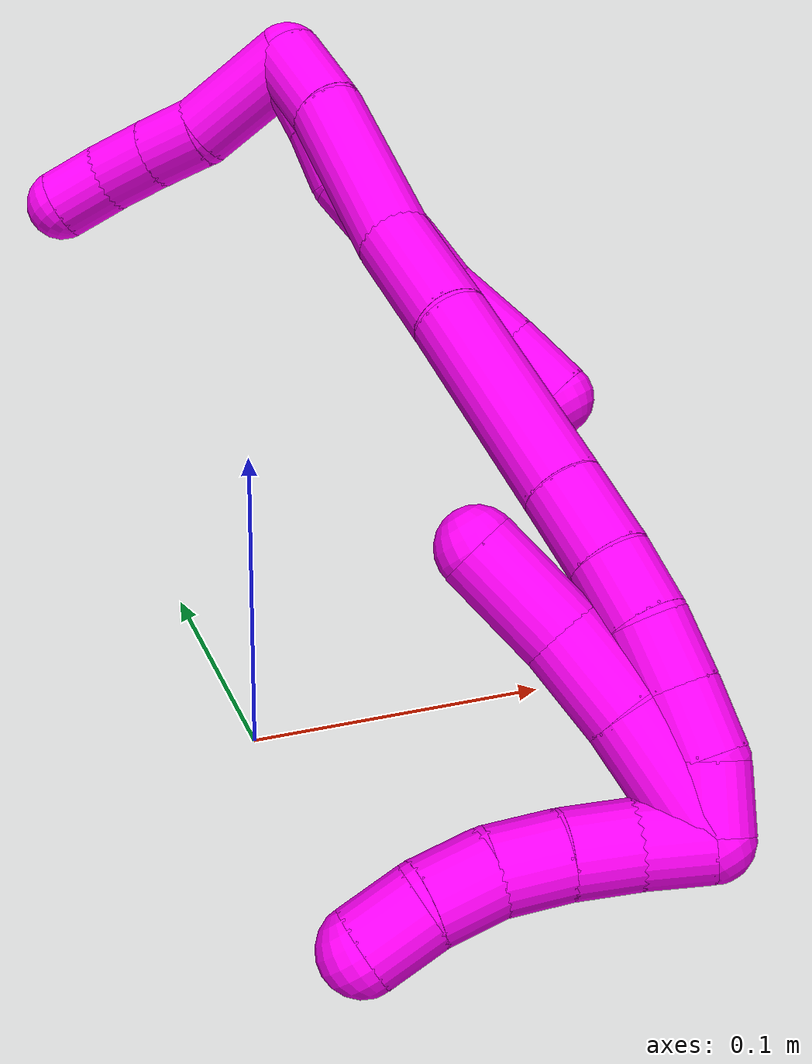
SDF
<sdf version="1.7">
 <world name="default">
  <model name="photoneo_s_sensor">
   <static>1</static>
   <pose>0 0 2 1.57079 1.57079 3.14159</pose>
   <link name="link">
    <inertial><mass>0.1</mass></inertial>
    <sensor name="sensor" type="depth">
     <update_rate>30</update_rate>
     <camera>
      <horizontal_fov>1.22</horizontal_fov>
      <image><width>1920</width><height>1200</height><format>B8G8R8</format></image>
      <clip><near>0.1</near><far>4</far></clip>
      <depth_camera><output>points</output></depth_camera>
     </camera>
     <plugin name="camera_plugin" filename="libgazebo_ros_depth_camera.so">
      <baseline>0.2</baseline>
      <alwaysOn>1</alwaysOn>
      <updateRate>0.0</updateRate>
      <cameraName>camera_ir</cameraName>
      <imageTopicName>/camera/color/image_raw</imageTopicName>
      <cameraInfoTopicName>/camera/color/camera_info</cameraInfoTopicName>
      <depthImageTopicName>/camera/depth/image_raw</depthImageTopicName>
      <depthImageCameraInfoTopicName>/camera/depth/camera_info</depthImageCameraInfoTopicName>
      <pointCloudTopicName>/camera/depth/points</pointCloudTopicName>
      <frameName>fr_optical</frameName>
      <pointCloudCutoff>0.1</pointCloudCutoff>
      <pointCloudCutoffMax>2.0</pointCloudCutoffMax>
      <distortionK1>0</distortionK1>
      <distortionK2>0</distortionK2>
      <distortionK3>0</distortionK3>
      <distortionT1>0</distortionT1>
      <distortionT2>0</distortionT2>
      <CxPrime>0</CxPrime>
      <Cx>0</Cx>
      <Cy>0</Cy>
      <focalLength>0</focalLength>
      <hackBaseline>0</hackBaseline>
     </plugin>
    </sensor>
   </link>
  </model>
  <model name="bin">
   <static>1</static>
   <link name="bottom">
    <collision name="collision-bottom">
     <pose>0 0 -0.01 0 -0 0</pose>
     <geometry><box><size>0.8 0.6 0.02</size></box></geometry>
     <surface>
      <friction><ode><mu>100</mu><mu2>100</mu2></ode></friction>
      <contact><collide_bitmask>65535</collide_bitmask></contact>
     </surface>
    </collision>
   </link>
   <link name="west_wall">
    <collision name="collision-west_wall">
     <pose>-0.41 0 0.1 0 -0 0</pose>
     <geometry><box><size>0.02 0.6 0.2</size></box></geometry>
     <surface>
      <friction><ode><mu>100</mu><mu2>100</mu2></ode></friction>
      <contact><collide_bitmask>65535</collide_bitmask></contact>
     </surface>
    </collision>
   </link>
   <link name="east_wall">
    <collision name="collision-east_wall">
     <pose>0.41 0 0.1 0 -0 0</pose>
     <geometry><box><size>0.02 0.6 0.2</size></box></geometry>
     <surface>
      <friction><ode><mu>100</mu><mu2>100</mu2></ode></friction>
      <contact><collide_bitmask>65535</collide_bitmask></contact>
     </surface>
    </collision>
   </link>
   <link name="south_wall">
    <collision name="collision-south_wall">
     <pose>0 -0.31 0.1 0 -0 0</pose>
     <geometry><box><size>0.8 0.02 0.2</size></box></geometry>
     <surface>
      <friction><ode><mu>100</mu><mu2>100</mu2></ode></friction>
      <contact><collide_bitmask>65535</collide_bitmask></contact>
     </surface>
    </collision>
   </link>
   <link name="north_wall">
    <collision name="collision-north_wall">
     <pose>0 0.31 0.1 0 -0 0</pose>
     <geometry><box><size>0.8 0.02 0.2</size></box></geometry>
     <surface>
      <friction><ode><mu>100</mu><mu2>100</mu2></ode></friction>
      <contact><collide_bitmask>65535</collide_bitmask></contact>
     </surface>
    </collision>
   </link>
  </model>
  <model name="10">
   <static>0</static>
   <link name="10">
    <collision name="collision-cylinder-e_1_2_8">
     <pose>-0.000688 -0.001043 -0.013126 3.0623 -0.052179 -1.1638</pose>
     <geometry><cylinder><radius>0.0125</radius><length>0.02637</length></cylinder></geometry>
     <surface>
      <friction><ode><mu>1.16</mu><mu2>1.16</mu2><slip1>0</slip1><slip2>0</slip2></ode></friction>
      <contact><ode><kp>1e+06</kp><kd>1</kd><max_vel>0</max_vel><min_depth>0.001</min_depth></ode></contact>
     </surface>
    </collision>
    <visual name="visual-cylinder-e_1_2_8">
     <pose>-0.000688 -0.001043 -0.013126 3.0623 -0.052179 -1.1638</pose>
     <geometry><cylinder><radius>0.0125</radius><length>0.02637</length></cylinder></geometry>
     <material><ambient>1 0 0.964706 1</ambient></material>
    </visual>
    <collision name="collision-cylinder-e_2_8_9">
     <pose>-0.003041 -0.001221 -0.03609 -3.05391 -0.1671 2.17654</pose>
     <geometry><cylinder><radius>0.0125</radius><length>0.020033</length></cylinder></geometry>
     <surface>
      <friction><ode><mu>1.16</mu><mu2>1.16</mu2><slip1>0</slip1><slip2>0</slip2></ode></friction>
      <contact><ode><kp>1e+06</kp><kd>1</kd><max_vel>0</max_vel><min_depth>0.001</min_depth></ode></contact>
     </surface>
    </collision>
    <visual name="visual-cylinder-e_2_8_9">
     <pose>-0.003041 -0.001221 -0.03609 -3.05391 -0.1671 2.17654</pose>
     <geometry><cylinder><radius>0.0125</radius><length>0.020033</length></cylinder></geometry>
     <material><ambient>1 0 0.964706 1</ambient></material>
    </visual>
    <collision name="collision-cylinder-e_3_9_10">
     <pose>-0.002362 -0.00045 -0.061071 3.13542 0.153647 3.06139</pose>
     <geometry><cylinder><radius>0.0125</radius><length>0.030645</length></cylinder></geometry>
     <surface>
      <friction><ode><mu>1.16</mu><mu2>1.16</mu2><slip1>0</slip1><slip2>0</slip2></ode></friction>
      <contact><ode><kp>1e+06</kp><kd>1</kd><max_vel>0</max_vel><min_depth>0.001</min_depth></ode></contact>
     </surface>
    </collision>
    <visual name="visual-cylinder-e_3_9_10">
     <pose>-0.002362 -0.00045 -0.061071 3.13542 0.153647 3.06139</pose>
     <geometry><cylinder><radius>0.0125</radius><length>0.030645</length></cylinder></geometry>
     <material><ambient>1 0 0.964706 1</ambient></material>
    </visual>
    <collision name="collision-cylinder-e_4_10_11">
     <pose>0.000982 -7e-06 -0.086393 -3.08896 0.097677 -2.15354</pose>
     <geometry><cylinder><radius>0.0125</radius><length>0.020486</length></cylinder></geometry>
     <surface>
      <friction><ode><mu>1.16</mu><mu2>1.16</mu2><slip1>0</slip1><slip2>0</slip2></ode></friction>
      <contact><ode><kp>1e+06</kp><kd>1</kd><max_vel>0</max_vel><min_depth>0.001</min_depth></ode></contact>
     </surface>
    </collision>
    <visual name="visual-cylinder-e_4_10_11">
     <pose>0.000982 -7e-06 -0.086393 -3.08896 0.097677 -2.15354</pose>
     <geometry><cylinder><radius>0.0125</radius><length>0.020486</length></cylinder></geometry>
     <material><ambient>1 0 0.964706 1</ambient></material>
    </visual>
    <collision name="collision-cylinder-e_5_11_12">
     <pose>0.006057 0.001344 -0.110215 -3.08198 0.289866 -2.73858</pose>
     <geometry><cylinder><radius>0.0125</radius><length>0.028522</length></cylinder></geometry>
     <surface>
      <friction><ode><mu>1.16</mu><mu2>1.16</mu2><slip1>0</slip1><slip2>0</slip2></ode></friction>
      <contact><ode><kp>1e+06</kp><kd>1</kd><max_vel>0</max_vel><min_depth>0.001</min_depth></ode></contact>
     </surface>
    </collision>
    <visual name="visual-cylinder-e_5_11_12">
     <pose>0.006057 0.001344 -0.110215 -3.08198 0.289866 -2.73858</pose>
     <geometry><cylinder><radius>0.0125</radius><length>0.028522</length></cylinder></geometry>
     <material><ambient>1 0 0.964706 1</ambient></material>
    </visual>
    <collision name="collision-cylinder-e_6_12_6">
     <pose>0.013065 0.001864 -0.13546 3.11628 0.247386 2.93868</pose>
     <geometry><cylinder><radius>0.0125</radius><length>0.023944</length></cylinder></geometry>
     <surface>
      <friction><ode><mu>1.16</mu><mu2>1.16</mu2><slip1>0</slip1><slip2>0</slip2></ode></friction>
      <contact><ode><kp>1e+06</kp><kd>1</kd><max_vel>0</max_vel><min_depth>0.001</min_depth></ode></contact>
     </surface>
    </collision>
    <visual name="visual-cylinder-e_6_12_6">
     <pose>0.013065 0.001864 -0.13546 3.11628 0.247386 2.93868</pose>
     <geometry><cylinder><radius>0.0125</radius><length>0.023944</length></cylinder></geometry>
     <material><ambient>1 0 0.964706 1</ambient></material>
    </visual>
    <collision name="collision-cylinder-e_1_2_13">
     <pose>-0.01969 0.002702 -0.000916 -1.89765 -1.4269 1.75813</pose>
     <geometry><cylinder><radius>0.0125</radius><length>0.039792</length></cylinder></geometry>
     <surface>
      <friction><ode><mu>1.16</mu><mu2>1.16</mu2><slip1>0</slip1><slip2>0</slip2></ode></friction>
      <contact><ode><kp>1e+06</kp><kd>1</kd><max_vel>0</max_vel><min_depth>0.001</min_depth></ode></contact>
     </surface>
    </collision>
    <visual name="visual-cylinder-e_1_2_13">
     <pose>-0.01969 0.002702 -0.000916 -1.89765 -1.4269 1.75813</pose>
     <geometry><cylinder><radius>0.0125</radius><length>0.039792</length></cylinder></geometry>
     <material><ambient>1 0 0.964706 1</ambient></material>
    </visual>
    <collision name="collision-cylinder-e_2_13_14">
     <pose>-0.049018 0.007247 0.000236 -0.727937 -1.29085 0.558702</pose>
     <geometry><cylinder><radius>0.0125</radius><length>0.020055</length></cylinder></geometry>
     <surface>
      <friction><ode><mu>1.16</mu><mu2>1.16</mu2><slip1>0</slip1><slip2>0</slip2></ode></friction>
      <contact><ode><kp>1e+06</kp><kd>1</kd><max_vel>0</max_vel><min_depth>0.001</min_depth></ode></contact>
     </surface>
    </collision>
    <visual name="visual-cylinder-e_2_13_14">
     <pose>-0.049018 0.007247 0.000236 -0.727937 -1.29085 0.558702</pose>
     <geometry><cylinder><radius>0.0125</radius><length>0.020055</length></cylinder></geometry>
     <material><ambient>1 0 0.964706 1</ambient></material>
    </visual>
    <collision name="collision-cylinder-e_3_14_15">
     <pose>-0.068408 0.01075 0.004014 -0.770556 -1.33125 0.616534</pose>
     <geometry><cylinder><radius>0.0125</radius><length>0.02008</length></cylinder></geometry>
     <surface>
      <friction><ode><mu>1.16</mu><mu2>1.16</mu2><slip1>0</slip1><slip2>0</slip2></ode></friction>
      <contact><ode><kp>1e+06</kp><kd>1</kd><max_vel>0</max_vel><min_depth>0.001</min_depth></ode></contact>
     </surface>
    </collision>
    <visual name="visual-cylinder-e_3_14_15">
     <pose>-0.068408 0.01075 0.004014 -0.770556 -1.33125 0.616534</pose>
     <geometry><cylinder><radius>0.0125</radius><length>0.02008</length></cylinder></geometry>
     <material><ambient>1 0 0.964706 1</ambient></material>
    </visual>
    <collision name="collision-cylinder-e_4_15_5">
     <pose>-0.088169 0.012418 0.006488 -0.011482 -1.49452 0.010638</pose>
     <geometry><cylinder><radius>0.0125</radius><length>0.020073</length></cylinder></geometry>
     <surface>
      <friction><ode><mu>1.16</mu><mu2>1.16</mu2><slip1>0</slip1><slip2>0</slip2></ode></friction>
      <contact><ode><kp>1e+06</kp><kd>1</kd><max_vel>0</max_vel><min_depth>0.001</min_depth></ode></contact>
     </surface>
    </collision>
    <visual name="visual-cylinder-e_4_15_5">
     <pose>-0.088169 0.012418 0.006488 -0.011482 -1.49452 0.010638</pose>
     <geometry><cylinder><radius>0.0125</radius><length>0.020073</length></cylinder></geometry>
     <material><ambient>1 0 0.964706 1</ambient></material>
    </visual>
    <collision name="collision-cylinder-e_1_2_16">
     <pose>0.001547 -0.006272 -0.013318 2.70145 0.104734 0.460329</pose>
     <geometry><cylinder><radius>0.0125</radius><length>0.029605</length></cylinder></geometry>
     <surface>
      <friction><ode><mu>1.16</mu><mu2>1.16</mu2><slip1>0</slip1><slip2>0</slip2></ode></friction>
      <contact><ode><kp>1e+06</kp><kd>1</kd><max_vel>0</max_vel><min_depth>0.001</min_depth></ode></contact>
     </surface>
    </collision>
    <visual name="visual-cylinder-e_1_2_16">
     <pose>0.001547 -0.006272 -0.013318 2.70145 0.104734 0.460329</pose>
     <geometry><cylinder><radius>0.0125</radius><length>0.029605</length></cylinder></geometry>
     <material><ambient>1 0 0.964706 1</ambient></material>
    </visual>
    <collision name="collision-cylinder-e_2_16_17">
     <pose>0.002393 -0.023447 -0.05301 2.7496 -0.024608 -0.123787</pose>
     <geometry><cylinder><radius>0.0125</radius><length>0.057094</length></cylinder></geometry>
     <surface>
      <friction><ode><mu>1.16</mu><mu2>1.16</mu2><slip1>0</slip1><slip2>0</slip2></ode></friction>
      <contact><ode><kp>1e+06</kp><kd>1</kd><max_vel>0</max_vel><min_depth>0.001</min_depth></ode></contact>
     </surface>
    </collision>
    <visual name="visual-cylinder-e_2_16_17">
     <pose>0.002393 -0.023447 -0.05301 2.7496 -0.024608 -0.123787</pose>
     <geometry><cylinder><radius>0.0125</radius><length>0.057094</length></cylinder></geometry>
     <material><ambient>1 0 0.964706 1</ambient></material>
    </visual>
    <collision name="collision-cylinder-e_3_17_18">
     <pose>0.003531 -0.044368 -0.096161 2.60326 0.093927 0.337496</pose>
     <geometry><cylinder><radius>0.0125</radius><length>0.039253</length></cylinder></geometry>
     <surface>
      <friction><ode><mu>1.16</mu><mu2>1.16</mu2><slip1>0</slip1><slip2>0</slip2></ode></friction>
      <contact><ode><kp>1e+06</kp><kd>1</kd><max_vel>0</max_vel><min_depth>0.001</min_depth></ode></contact>
     </surface>
    </collision>
    <visual name="visual-cylinder-e_3_17_18">
     <pose>0.003531 -0.044368 -0.096161 2.60326 0.093927 0.337496</pose>
     <geometry><cylinder><radius>0.0125</radius><length>0.039253</length></cylinder></geometry>
     <material><ambient>1 0 0.964706 1</ambient></material>
    </visual>
    <collision name="collision-cylinder-e_4_18_19">
     <pose>0.007571 -0.06774 -0.143908 2.73451 0.065129 0.313078</pose>
     <geometry><cylinder><radius>0.0125</radius><length>0.067596</length></cylinder></geometry>
     <surface>
      <friction><ode><mu>1.16</mu><mu2>1.16</mu2><slip1>0</slip1><slip2>0</slip2></ode></friction>
      <contact><ode><kp>1e+06</kp><kd>1</kd><max_vel>0</max_vel><min_depth>0.001</min_depth></ode></contact>
     </surface>
    </collision>
    <visual name="visual-cylinder-e_4_18_19">
     <pose>0.007571 -0.06774 -0.143908 2.73451 0.065129 0.313078</pose>
     <geometry><cylinder><radius>0.0125</radius><length>0.067596</length></cylinder></geometry>
     <material><ambient>1 0 0.964706 1</ambient></material>
    </visual>
    <collision name="collision-cylinder-e_5_19_20">
     <pose>0.010457 -0.085618 -0.186782 2.77835 0.053803 0.290971</pose>
     <geometry><cylinder><radius>0.0125</radius><length>0.025508</length></cylinder></geometry>
     <surface>
      <friction><ode><mu>1.16</mu><mu2>1.16</mu2><slip1>0</slip1><slip2>0</slip2></ode></friction>
      <contact><ode><kp>1e+06</kp><kd>1</kd><max_vel>0</max_vel><min_depth>0.001</min_depth></ode></contact>
     </surface>
    </collision>
    <visual name="visual-cylinder-e_5_19_20">
     <pose>0.010457 -0.085618 -0.186782 2.77835 0.053803 0.290971</pose>
     <geometry><cylinder><radius>0.0125</radius><length>0.025508</length></cylinder></geometry>
     <material><ambient>1 0 0.964706 1</ambient></material>
    </visual>
    <collision name="collision-cylinder-e_6_20_21">
     <pose>0.01108 -0.093182 -0.208427 2.83917 -0.006177 -0.040534</pose>
     <geometry><cylinder><radius>0.0125</radius><length>0.020407</length></cylinder></geometry>
     <surface>
      <friction><ode><mu>1.16</mu><mu2>1.16</mu2><slip1>0</slip1><slip2>0</slip2></ode></friction>
      <contact><ode><kp>1e+06</kp><kd>1</kd><max_vel>0</max_vel><min_depth>0.001</min_depth></ode></contact>
     </surface>
    </collision>
    <visual name="visual-cylinder-e_6_20_21">
     <pose>0.01108 -0.093182 -0.208427 2.83917 -0.006177 -0.040534</pose>
     <geometry><cylinder><radius>0.0125</radius><length>0.020407</length></cylinder></geometry>
     <material><ambient>1 0 0.964706 1</ambient></material>
    </visual>
    <collision name="collision-cylinder-e_7_21_22">
     <pose>0.009823 -0.097931 -0.227996 2.96932 -0.119111 -1.20869</pose>
     <geometry><cylinder><radius>0.0125</radius><length>0.020095</length></cylinder></geometry>
     <surface>
      <friction><ode><mu>1.16</mu><mu2>1.16</mu2><slip1>0</slip1><slip2>0</slip2></ode></friction>
      <contact><ode><kp>1e+06</kp><kd>1</kd><max_vel>0</max_vel><min_depth>0.001</min_depth></ode></contact>
     </surface>
    </collision>
    <visual name="visual-cylinder-e_7_21_22">
     <pose>0.009823 -0.097931 -0.227996 2.96932 -0.119111 -1.20869</pose>
     <geometry><cylinder><radius>0.0125</radius><length>0.020095</length></cylinder></geometry>
     <material><ambient>1 0 0.964706 1</ambient></material>
    </visual>
    <collision name="collision-cylinder-e_8_22_23">
     <pose>0.007099 -0.101839 -0.247683 2.9222 -0.15034 -1.19954</pose>
     <geometry><cylinder><radius>0.0125</radius><length>0.020432</length></cylinder></geometry>
     <surface>
      <friction><ode><mu>1.16</mu><mu2>1.16</mu2><slip1>0</slip1><slip2>0</slip2></ode></friction>
      <contact><ode><kp>1e+06</kp><kd>1</kd><max_vel>0</max_vel><min_depth>0.001</min_depth></ode></contact>
     </surface>
    </collision>
    <visual name="visual-cylinder-e_8_22_23">
     <pose>0.007099 -0.101839 -0.247683 2.9222 -0.15034 -1.19954</pose>
     <geometry><cylinder><radius>0.0125</radius><length>0.020432</length></cylinder></geometry>
     <material><ambient>1 0 0.964706 1</ambient></material>
    </visual>
    <collision name="collision-cylinder-e_9_23_1">
     <pose>0.000926 -0.105852 -0.266216 2.93535 -0.482542 -2.34537</pose>
     <geometry><cylinder><radius>0.0125</radius><length>0.02001</length></cylinder></geometry>
     <surface>
      <friction><ode><mu>1.16</mu><mu2>1.16</mu2><slip1>0</slip1><slip2>0</slip2></ode></friction>
      <contact><ode><kp>1e+06</kp><kd>1</kd><max_vel>0</max_vel><min_depth>0.001</min_depth></ode></contact>
     </surface>
    </collision>
    <visual name="visual-cylinder-e_9_23_1">
     <pose>0.000926 -0.105852 -0.266216 2.93535 -0.482542 -2.34537</pose>
     <geometry><cylinder><radius>0.0125</radius><length>0.02001</length></cylinder></geometry>
     <material><ambient>1 0 0.964706 1</ambient></material>
    </visual>
    <collision name="collision-cylinder-e_1_1_24">
     <pose>-0.004885 -0.105351 -0.25576 -0.120482 -0.060543 0.003653</pose>
     <geometry><cylinder><radius>0.0125</radius><length>0.038611</length></cylinder></geometry>
     <surface>
      <friction><ode><mu>1.16</mu><mu2>1.16</mu2><slip1>0</slip1><slip2>0</slip2></ode></friction>
      <contact><ode><kp>1e+06</kp><kd>1</kd><max_vel>0</max_vel><min_depth>0.001</min_depth></ode></contact>
     </surface>
    </collision>
    <visual name="visual-cylinder-e_1_1_24">
     <pose>-0.004885 -0.105351 -0.25576 -0.120482 -0.060543 0.003653</pose>
     <geometry><cylinder><radius>0.0125</radius><length>0.038611</length></cylinder></geometry>
     <material><ambient>1 0 0.964706 1</ambient></material>
    </visual>
    <collision name="collision-cylinder-e_2_24_25">
     <pose>-0.008185 -0.100778 -0.223027 -0.164466 -0.153421 0.012669</pose>
     <geometry><cylinder><radius>0.0125</radius><length>0.027905</length></cylinder></geometry>
     <surface>
      <friction><ode><mu>1.16</mu><mu2>1.16</mu2><slip1>0</slip1><slip2>0</slip2></ode></friction>
      <contact><ode><kp>1e+06</kp><kd>1</kd><max_vel>0</max_vel><min_depth>0.001</min_depth></ode></contact>
     </surface>
    </collision>
    <visual name="visual-cylinder-e_2_24_25">
     <pose>-0.008185 -0.100778 -0.223027 -0.164466 -0.153421 0.012669</pose>
     <geometry><cylinder><radius>0.0125</radius><length>0.027905</length></cylinder></geometry>
     <material><ambient>1 0 0.964706 1</ambient></material>
    </visual>
    <collision name="collision-cylinder-e_3_25_4">
     <pose>-0.013997 -0.098758 -0.193094 0.014556 -0.221591 -0.001619</pose>
     <geometry><cylinder><radius>0.0125</radius><length>0.033484</length></cylinder></geometry>
     <surface>
      <friction><ode><mu>1.16</mu><mu2>1.16</mu2><slip1>0</slip1><slip2>0</slip2></ode></friction>
      <contact><ode><kp>1e+06</kp><kd>1</kd><max_vel>0</max_vel><min_depth>0.001</min_depth></ode></contact>
     </surface>
    </collision>
    <visual name="visual-cylinder-e_3_25_4">
     <pose>-0.013997 -0.098758 -0.193094 0.014556 -0.221591 -0.001619</pose>
     <geometry><cylinder><radius>0.0125</radius><length>0.033484</length></cylinder></geometry>
     <material><ambient>1 0 0.964706 1</ambient></material>
    </visual>
    <collision name="collision-cylinder-e_1_1_26">
     <pose>-0.012577 -0.109388 -0.270585 0.380209 -1.08868 -0.231924</pose>
     <geometry><cylinder><radius>0.0125</radius><length>0.02</length></cylinder></geometry>
     <surface>
      <friction><ode><mu>1.16</mu><mu2>1.16</mu2><slip1>0</slip1><slip2>0</slip2></ode></friction>
      <contact><ode><kp>1e+06</kp><kd>1</kd><max_vel>0</max_vel><min_depth>0.001</min_depth></ode></contact>
     </surface>
    </collision>
    <visual name="visual-cylinder-e_1_1_26">
     <pose>-0.012577 -0.109388 -0.270585 0.380209 -1.08868 -0.231924</pose>
     <geometry><cylinder><radius>0.0125</radius><length>0.02</length></cylinder></geometry>
     <material><ambient>1 0 0.964706 1</ambient></material>
    </visual>
    <collision name="collision-cylinder-e_2_26_27">
     <pose>-0.029818 -0.114743 -0.262211 0.728972 -0.993774 -0.408029</pose>
     <geometry><cylinder><radius>0.0125</radius><length>0.02</length></cylinder></geometry>
     <surface>
      <friction><ode><mu>1.16</mu><mu2>1.16</mu2><slip1>0</slip1><slip2>0</slip2></ode></friction>
      <contact><ode><kp>1e+06</kp><kd>1</kd><max_vel>0</max_vel><min_depth>0.001</min_depth></ode></contact>
     </surface>
    </collision>
    <visual name="visual-cylinder-e_2_26_27">
     <pose>-0.029818 -0.114743 -0.262211 0.728972 -0.993774 -0.408029</pose>
     <geometry><cylinder><radius>0.0125</radius><length>0.02</length></cylinder></geometry>
     <material><ambient>1 0 0.964706 1</ambient></material>
    </visual>
    <collision name="collision-cylinder-e_3_27_28">
     <pose>-0.046983 -0.1219 -0.254915 0.829134 -1.07263 -0.51172</pose>
     <geometry><cylinder><radius>0.0125</radius><length>0.02</length></cylinder></geometry>
     <surface>
      <friction><ode><mu>1.16</mu><mu2>1.16</mu2><slip1>0</slip1><slip2>0</slip2></ode></friction>
      <contact><ode><kp>1e+06</kp><kd>1</kd><max_vel>0</max_vel><min_depth>0.001</min_depth></ode></contact>
     </surface>
    </collision>
    <visual name="visual-cylinder-e_3_27_28">
     <pose>-0.046983 -0.1219 -0.254915 0.829134 -1.07263 -0.51172</pose>
     <geometry><cylinder><radius>0.0125</radius><length>0.02</length></cylinder></geometry>
     <material><ambient>1 0 0.964706 1</ambient></material>
    </visual>
    <collision name="collision-cylinder-e_4_28_29">
     <pose>-0.064675 -0.129795 -0.250444 1.29387 -1.0989 -0.866491</pose>
     <geometry><cylinder><radius>0.0125</radius><length>0.02</length></cylinder></geometry>
     <surface>
      <friction><ode><mu>1.16</mu><mu2>1.16</mu2><slip1>0</slip1><slip2>0</slip2></ode></friction>
      <contact><ode><kp>1e+06</kp><kd>1</kd><max_vel>0</max_vel><min_depth>0.001</min_depth></ode></contact>
     </surface>
    </collision>
    <visual name="visual-cylinder-e_4_28_29">
     <pose>-0.064675 -0.129795 -0.250444 1.29387 -1.0989 -0.866491</pose>
     <geometry><cylinder><radius>0.0125</radius><length>0.02</length></cylinder></geometry>
     <material><ambient>1 0 0.964706 1</ambient></material>
    </visual>
    <collision name="collision-cylinder-e_5_29_3">
     <pose>-0.08318 -0.136916 -0.249768 1.77411 -1.28633 -1.48724</pose>
     <geometry><cylinder><radius>0.0125</radius><length>0.02</length></cylinder></geometry>
     <surface>
      <friction><ode><mu>1.16</mu><mu2>1.16</mu2><slip1>0</slip1><slip2>0</slip2></ode></friction>
      <contact><ode><kp>1e+06</kp><kd>1</kd><max_vel>0</max_vel><min_depth>0.001</min_depth></ode></contact>
     </surface>
    </collision>
    <visual name="visual-cylinder-e_5_29_3">
     <pose>-0.08318 -0.136916 -0.249768 1.77411 -1.28633 -1.48724</pose>
     <geometry><cylinder><radius>0.0125</radius><length>0.02</length></cylinder></geometry>
     <material><ambient>1 0 0.964706 1</ambient></material>
    </visual>
    <collision name="collision-sphere-3">
     <pose>-0.092778 -0.139665 -0.250334 0 -0 0</pose>
     <geometry><sphere><radius>0.0125</radius></sphere></geometry>
     <surface>
      <friction><ode><mu>1.16</mu><mu2>1.16</mu2><slip1>0</slip1><slip2>0</slip2></ode></friction>
      <contact><ode><kp>1e+06</kp><kd>1</kd><max_vel>0</max_vel><min_depth>0.001</min_depth></ode></contact>
     </surface>
    </collision>
    <visual name="visual-sphere-3">
     <pose>-0.092778 -0.139665 -0.250334 0 -0 0</pose>
     <geometry><sphere><radius>0.0125</radius></sphere></geometry>
     <material><ambient>1 0 0.964706 1</ambient></material>
    </visual>
    <collision name="collision-sphere-29">
     <pose>-0.073582 -0.134168 -0.249201 0 -0 0</pose>
     <geometry><sphere><radius>0.0125</radius></sphere></geometry>
     <surface>
      <friction><ode><mu>1.16</mu><mu2>1.16</mu2><slip1>0</slip1><slip2>0</slip2></ode></friction>
      <contact><ode><kp>1e+06</kp><kd>1</kd><max_vel>0</max_vel><min_depth>0.001</min_depth></ode></contact>
     </surface>
    </collision>
    <visual name="visual-sphere-29">
     <pose>-0.073582 -0.134168 -0.249201 0 -0 0</pose>
     <geometry><sphere><radius>0.0125</radius></sphere></geometry>
     <material><ambient>1 0 0.964706 1</ambient></material>
    </visual>
    <collision name="collision-sphere-28">
     <pose>-0.055768 -0.125423 -0.251687 0 -0 0</pose>
     <geometry><sphere><radius>0.0125</radius></sphere></geometry>
     <surface>
      <friction><ode><mu>1.16</mu><mu2>1.16</mu2><slip1>0</slip1><slip2>0</slip2></ode></friction>
      <contact><ode><kp>1e+06</kp><kd>1</kd><max_vel>0</max_vel><min_depth>0.001</min_depth></ode></contact>
     </surface>
    </collision>
    <visual name="visual-sphere-28">
     <pose>-0.055768 -0.125423 -0.251687 0 -0 0</pose>
     <geometry><sphere><radius>0.0125</radius></sphere></geometry>
     <material><ambient>1 0 0.964706 1</ambient></material>
    </visual>
    <collision name="collision-sphere-27">
     <pose>-0.038199 -0.118376 -0.258142 0 -0 0</pose>
     <geometry><sphere><radius>0.0125</radius></sphere></geometry>
     <surface>
      <friction><ode><mu>1.16</mu><mu2>1.16</mu2><slip1>0</slip1><slip2>0</slip2></ode></friction>
      <contact><ode><kp>1e+06</kp><kd>1</kd><max_vel>0</max_vel><min_depth>0.001</min_depth></ode></contact>
     </surface>
    </collision>
    <visual name="visual-sphere-27">
     <pose>-0.038199 -0.118376 -0.258142 0 -0 0</pose>
     <geometry><sphere><radius>0.0125</radius></sphere></geometry>
     <material><ambient>1 0 0.964706 1</ambient></material>
    </visual>
    <collision name="collision-sphere-26">
     <pose>-0.021437 -0.111109 -0.26628 0 -0 0</pose>
     <geometry><sphere><radius>0.0125</radius></sphere></geometry>
     <surface>
      <friction><ode><mu>1.16</mu><mu2>1.16</mu2><slip1>0</slip1><slip2>0</slip2></ode></friction>
      <contact><ode><kp>1e+06</kp><kd>1</kd><max_vel>0</max_vel><min_depth>0.001</min_depth></ode></contact>
     </surface>
    </collision>
    <visual name="visual-sphere-26">
     <pose>-0.021437 -0.111109 -0.26628 0 -0 0</pose>
     <geometry><sphere><radius>0.0125</radius></sphere></geometry>
     <material><ambient>1 0 0.964706 1</ambient></material>
    </visual>
    <collision name="collision-sphere-4">
     <pose>-0.017677 -0.098996 -0.176763 0 -0 0</pose>
     <geometry><sphere><radius>0.0125</radius></sphere></geometry>
     <surface>
      <friction><ode><mu>1.16</mu><mu2>1.16</mu2><slip1>0</slip1><slip2>0</slip2></ode></friction>
      <contact><ode><kp>1e+06</kp><kd>1</kd><max_vel>0</max_vel><min_depth>0.001</min_depth></ode></contact>
     </surface>
    </collision>
    <visual name="visual-sphere-4">
     <pose>-0.017677 -0.098996 -0.176763 0 -0 0</pose>
     <geometry><sphere><radius>0.0125</radius></sphere></geometry>
     <material><ambient>1 0 0.964706 1</ambient></material>
    </visual>
    <collision name="collision-sphere-25">
     <pose>-0.010317 -0.09852 -0.209425 0 -0 0</pose>
     <geometry><sphere><radius>0.0125</radius></sphere></geometry>
     <surface>
      <friction><ode><mu>1.16</mu><mu2>1.16</mu2><slip1>0</slip1><slip2>0</slip2></ode></friction>
      <contact><ode><kp>1e+06</kp><kd>1</kd><max_vel>0</max_vel><min_depth>0.001</min_depth></ode></contact>
     </surface>
    </collision>
    <visual name="visual-sphere-25">
     <pose>-0.010317 -0.09852 -0.209425 0 -0 0</pose>
     <geometry><sphere><radius>0.0125</radius></sphere></geometry>
     <material><ambient>1 0 0.964706 1</ambient></material>
    </visual>
    <collision name="collision-sphere-24">
     <pose>-0.006053 -0.103035 -0.23663 0 -0 0</pose>
     <geometry><sphere><radius>0.0125</radius></sphere></geometry>
     <surface>
      <friction><ode><mu>1.16</mu><mu2>1.16</mu2><slip1>0</slip1><slip2>0</slip2></ode></friction>
      <contact><ode><kp>1e+06</kp><kd>1</kd><max_vel>0</max_vel><min_depth>0.001</min_depth></ode></contact>
     </surface>
    </collision>
    <visual name="visual-sphere-24">
     <pose>-0.006053 -0.103035 -0.23663 0 -0 0</pose>
     <geometry><sphere><radius>0.0125</radius></sphere></geometry>
     <material><ambient>1 0 0.964706 1</ambient></material>
    </visual>
    <collision name="collision-sphere-1">
     <pose>-0.003717 -0.107667 -0.274891 0 -0 0</pose>
     <geometry><sphere><radius>0.0125</radius></sphere></geometry>
     <surface>
      <friction><ode><mu>1.16</mu><mu2>1.16</mu2><slip1>0</slip1><slip2>0</slip2></ode></friction>
      <contact><ode><kp>1e+06</kp><kd>1</kd><max_vel>0</max_vel><min_depth>0.001</min_depth></ode></contact>
     </surface>
    </collision>
    <visual name="visual-sphere-1">
     <pose>-0.003717 -0.107667 -0.274891 0 -0 0</pose>
     <geometry><sphere><radius>0.0125</radius></sphere></geometry>
     <material><ambient>1 0 0.964706 1</ambient></material>
    </visual>
    <collision name="collision-sphere-23">
     <pose>0.005569 -0.104038 -0.257541 0 -0 0</pose>
     <geometry><sphere><radius>0.0125</radius></sphere></geometry>
     <surface>
      <friction><ode><mu>1.16</mu><mu2>1.16</mu2><slip1>0</slip1><slip2>0</slip2></ode></friction>
      <contact><ode><kp>1e+06</kp><kd>1</kd><max_vel>0</max_vel><min_depth>0.001</min_depth></ode></contact>
     </surface>
    </collision>
    <visual name="visual-sphere-23">
     <pose>0.005569 -0.104038 -0.257541 0 -0 0</pose>
     <geometry><sphere><radius>0.0125</radius></sphere></geometry>
     <material><ambient>1 0 0.964706 1</ambient></material>
    </visual>
    <collision name="collision-sphere-22">
     <pose>0.008629 -0.099641 -0.237824 0 -0 0</pose>
     <geometry><sphere><radius>0.0125</radius></sphere></geometry>
     <surface>
      <friction><ode><mu>1.16</mu><mu2>1.16</mu2><slip1>0</slip1><slip2>0</slip2></ode></friction>
      <contact><ode><kp>1e+06</kp><kd>1</kd><max_vel>0</max_vel><min_depth>0.001</min_depth></ode></contact>
     </surface>
    </collision>
    <visual name="visual-sphere-22">
     <pose>0.008629 -0.099641 -0.237824 0 -0 0</pose>
     <geometry><sphere><radius>0.0125</radius></sphere></geometry>
     <material><ambient>1 0 0.964706 1</ambient></material>
    </visual>
    <collision name="collision-sphere-21">
     <pose>0.011017 -0.096221 -0.218167 0 -0 0</pose>
     <geometry><sphere><radius>0.0125</radius></sphere></geometry>
     <surface>
      <friction><ode><mu>1.16</mu><mu2>1.16</mu2><slip1>0</slip1><slip2>0</slip2></ode></friction>
      <contact><ode><kp>1e+06</kp><kd>1</kd><max_vel>0</max_vel><min_depth>0.001</min_depth></ode></contact>
     </surface>
    </collision>
    <visual name="visual-sphere-21">
     <pose>0.011017 -0.096221 -0.218167 0 -0 0</pose>
     <geometry><sphere><radius>0.0125</radius></sphere></geometry>
     <material><ambient>1 0 0.964706 1</ambient></material>
    </visual>
    <collision name="collision-sphere-12">
     <pose>0.010133 0.002158 -0.123857 0 -0 0</pose>
     <geometry><sphere><radius>0.0125</radius></sphere></geometry>
     <surface>
      <friction><ode><mu>1.16</mu><mu2>1.16</mu2><slip1>0</slip1><slip2>0</slip2></ode></friction>
      <contact><ode><kp>1e+06</kp><kd>1</kd><max_vel>0</max_vel><min_depth>0.001</min_depth></ode></contact>
     </surface>
    </collision>
    <visual name="visual-sphere-12">
     <pose>0.010133 0.002158 -0.123857 0 -0 0</pose>
     <geometry><sphere><radius>0.0125</radius></sphere></geometry>
     <material><ambient>1 0 0.964706 1</ambient></material>
    </visual>
    <collision name="collision-sphere-11">
     <pose>0.001981 0.00053 -0.096573 0 -0 0</pose>
     <geometry><sphere><radius>0.0125</radius></sphere></geometry>
     <surface>
      <friction><ode><mu>1.16</mu><mu2>1.16</mu2><slip1>0</slip1><slip2>0</slip2></ode></friction>
      <contact><ode><kp>1e+06</kp><kd>1</kd><max_vel>0</max_vel><min_depth>0.001</min_depth></ode></contact>
     </surface>
    </collision>
    <visual name="visual-sphere-11">
     <pose>0.001981 0.00053 -0.096573 0 -0 0</pose>
     <geometry><sphere><radius>0.0125</radius></sphere></geometry>
     <material><ambient>1 0 0.964706 1</ambient></material>
    </visual>
    <collision name="collision-sphere-10">
     <pose>-1.7e-05 -0.000543 -0.076212 0 -0 0</pose>
     <geometry><sphere><radius>0.0125</radius></sphere></geometry>
     <surface>
      <friction><ode><mu>1.16</mu><mu2>1.16</mu2><slip1>0</slip1><slip2>0</slip2></ode></friction>
      <contact><ode><kp>1e+06</kp><kd>1</kd><max_vel>0</max_vel><min_depth>0.001</min_depth></ode></contact>
     </surface>
    </collision>
    <visual name="visual-sphere-10">
     <pose>-1.7e-05 -0.000543 -0.076212 0 -0 0</pose>
     <geometry><sphere><radius>0.0125</radius></sphere></geometry>
     <material><ambient>1 0 0.964706 1</ambient></material>
    </visual>
    <collision name="collision-sphere-9">
     <pose>-0.004707 -0.000356 -0.045929 0 -0 0</pose>
     <geometry><sphere><radius>0.0125</radius></sphere></geometry>
     <surface>
      <friction><ode><mu>1.16</mu><mu2>1.16</mu2><slip1>0</slip1><slip2>0</slip2></ode></friction>
      <contact><ode><kp>1e+06</kp><kd>1</kd><max_vel>0</max_vel><min_depth>0.001</min_depth></ode></contact>
     </surface>
    </collision>
    <visual name="visual-sphere-9">
     <pose>-0.004707 -0.000356 -0.045929 0 -0 0</pose>
     <geometry><sphere><radius>0.0125</radius></sphere></geometry>
     <material><ambient>1 0 0.964706 1</ambient></material>
    </visual>
    <collision name="collision-sphere-2">
     <geometry><sphere><radius>0.0125</radius></sphere></geometry>
     <surface>
      <friction><ode><mu>1.16</mu><mu2>1.16</mu2><slip1>0</slip1><slip2>0</slip2></ode></friction>
      <contact><ode><kp>1e+06</kp><kd>1</kd><max_vel>0</max_vel><min_depth>0.001</min_depth></ode></contact>
     </surface>
    </collision>
    <visual name="visual-sphere-2">
     <geometry><sphere><radius>0.0125</radius></sphere></geometry>
     <material><ambient>1 0 0.964706 1</ambient></material>
    </visual>
    <collision name="collision-sphere-19">
     <pose>0.009771 -0.081093 -0.174878 0 -0 0</pose>
     <geometry><sphere><radius>0.0125</radius></sphere></geometry>
     <surface>
      <friction><ode><mu>1.16</mu><mu2>1.16</mu2><slip1>0</slip1><slip2>0</slip2></ode></friction>
      <contact><ode><kp>1e+06</kp><kd>1</kd><max_vel>0</max_vel><min_depth>0.001</min_depth></ode></contact>
     </surface>
    </collision>
    <visual name="visual-sphere-19">
     <pose>0.009771 -0.081093 -0.174878 0 -0 0</pose>
     <geometry><sphere><radius>0.0125</radius></sphere></geometry>
     <material><ambient>1 0 0.964706 1</ambient></material>
    </visual>
    <collision name="collision-sphere-8">
     <pose>-0.001375 -0.002086 -0.026251 0 -0 0</pose>
     <geometry><sphere><radius>0.0125</radius></sphere></geometry>
     <surface>
      <friction><ode><mu>1.16</mu><mu2>1.16</mu2><slip1>0</slip1><slip2>0</slip2></ode></friction>
      <contact><ode><kp>1e+06</kp><kd>1</kd><max_vel>0</max_vel><min_depth>0.001</min_depth></ode></contact>
     </surface>
    </collision>
    <visual name="visual-sphere-8">
     <pose>-0.001375 -0.002086 -0.026251 0 -0 0</pose>
     <geometry><sphere><radius>0.0125</radius></sphere></geometry>
     <material><ambient>1 0 0.964706 1</ambient></material>
    </visual>
    <collision name="collision-sphere-6">
     <pose>0.015996 0.00157 -0.147064 0 -0 0</pose>
     <geometry><sphere><radius>0.0125</radius></sphere></geometry>
     <surface>
      <friction><ode><mu>1.16</mu><mu2>1.16</mu2><slip1>0</slip1><slip2>0</slip2></ode></friction>
      <contact><ode><kp>1e+06</kp><kd>1</kd><max_vel>0</max_vel><min_depth>0.001</min_depth></ode></contact>
     </surface>
    </collision>
    <visual name="visual-sphere-6">
     <pose>0.015996 0.00157 -0.147064 0 -0 0</pose>
     <geometry><sphere><radius>0.0125</radius></sphere></geometry>
     <material><ambient>1 0 0.964706 1</ambient></material>
    </visual>
    <collision name="collision-sphere-13">
     <pose>-0.039381 0.005404 -0.001832 0 -0 0</pose>
     <geometry><sphere><radius>0.0125</radius></sphere></geometry>
     <surface>
      <friction><ode><mu>1.16</mu><mu2>1.16</mu2><slip1>0</slip1><slip2>0</slip2></ode></friction>
      <contact><ode><kp>1e+06</kp><kd>1</kd><max_vel>0</max_vel><min_depth>0.001</min_depth></ode></contact>
     </surface>
    </collision>
    <visual name="visual-sphere-13">
     <pose>-0.039381 0.005404 -0.001832 0 -0 0</pose>
     <geometry><sphere><radius>0.0125</radius></sphere></geometry>
     <material><ambient>1 0 0.964706 1</ambient></material>
    </visual>
    <collision name="collision-sphere-14">
     <pose>-0.058655 0.009091 0.002305 0 -0 0</pose>
     <geometry><sphere><radius>0.0125</radius></sphere></geometry>
     <surface>
      <friction><ode><mu>1.16</mu><mu2>1.16</mu2><slip1>0</slip1><slip2>0</slip2></ode></friction>
      <contact><ode><kp>1e+06</kp><kd>1</kd><max_vel>0</max_vel><min_depth>0.001</min_depth></ode></contact>
     </surface>
    </collision>
    <visual name="visual-sphere-14">
     <pose>-0.058655 0.009091 0.002305 0 -0 0</pose>
     <geometry><sphere><radius>0.0125</radius></sphere></geometry>
     <material><ambient>1 0 0.964706 1</ambient></material>
    </visual>
    <collision name="collision-sphere-15">
     <pose>-0.078162 0.012409 0.005723 0 -0 0</pose>
     <geometry><sphere><radius>0.0125</radius></sphere></geometry>
     <surface>
      <friction><ode><mu>1.16</mu><mu2>1.16</mu2><slip1>0</slip1><slip2>0</slip2></ode></friction>
      <contact><ode><kp>1e+06</kp><kd>1</kd><max_vel>0</max_vel><min_depth>0.001</min_depth></ode></contact>
     </surface>
    </collision>
    <visual name="visual-sphere-15">
     <pose>-0.078162 0.012409 0.005723 0 -0 0</pose>
     <geometry><sphere><radius>0.0125</radius></sphere></geometry>
     <material><ambient>1 0 0.964706 1</ambient></material>
    </visual>
    <collision name="collision-sphere-5">
     <pose>-0.098176 0.012427 0.007253 0 -0 0</pose>
     <geometry><sphere><radius>0.0125</radius></sphere></geometry>
     <surface>
      <friction><ode><mu>1.16</mu><mu2>1.16</mu2><slip1>0</slip1><slip2>0</slip2></ode></friction>
      <contact><ode><kp>1e+06</kp><kd>1</kd><max_vel>0</max_vel><min_depth>0.001</min_depth></ode></contact>
     </surface>
    </collision>
    <visual name="visual-sphere-5">
     <pose>-0.098176 0.012427 0.007253 0 -0 0</pose>
     <geometry><sphere><radius>0.0125</radius></sphere></geometry>
     <material><ambient>1 0 0.964706 1</ambient></material>
    </visual>
    <collision name="collision-sphere-16">
     <pose>0.003095 -0.012544 -0.026636 0 -0 0</pose>
     <geometry><sphere><radius>0.0125</radius></sphere></geometry>
     <surface>
      <friction><ode><mu>1.16</mu><mu2>1.16</mu2><slip1>0</slip1><slip2>0</slip2></ode></friction>
      <contact><ode><kp>1e+06</kp><kd>1</kd><max_vel>0</max_vel><min_depth>0.001</min_depth></ode></contact>
     </surface>
    </collision>
    <visual name="visual-sphere-16">
     <pose>0.003095 -0.012544 -0.026636 0 -0 0</pose>
     <geometry><sphere><radius>0.0125</radius></sphere></geometry>
     <material><ambient>1 0 0.964706 1</ambient></material>
    </visual>
    <collision name="collision-sphere-17">
     <pose>0.00169 -0.03435 -0.079384 0 -0 0</pose>
     <geometry><sphere><radius>0.0125</radius></sphere></geometry>
     <surface>
      <friction><ode><mu>1.16</mu><mu2>1.16</mu2><slip1>0</slip1><slip2>0</slip2></ode></friction>
      <contact><ode><kp>1e+06</kp><kd>1</kd><max_vel>0</max_vel><min_depth>0.001</min_depth></ode></contact>
     </surface>
    </collision>
    <visual name="visual-sphere-17">
     <pose>0.00169 -0.03435 -0.079384 0 -0 0</pose>
     <geometry><sphere><radius>0.0125</radius></sphere></geometry>
     <material><ambient>1 0 0.964706 1</ambient></material>
    </visual>
    <collision name="collision-sphere-18">
     <pose>0.005372 -0.054386 -0.112937 0 -0 0</pose>
     <geometry><sphere><radius>0.0125</radius></sphere></geometry>
     <surface>
      <friction><ode><mu>1.16</mu><mu2>1.16</mu2><slip1>0</slip1><slip2>0</slip2></ode></friction>
      <contact><ode><kp>1e+06</kp><kd>1</kd><max_vel>0</max_vel><min_depth>0.001</min_depth></ode></contact>
     </surface>
    </collision>
    <visual name="visual-sphere-18">
     <pose>0.005372 -0.054386 -0.112937 0 -0 0</pose>
     <geometry><sphere><radius>0.0125</radius></sphere></geometry>
     <material><ambient>1 0 0.964706 1</ambient></material>
    </visual>
    <collision name="collision-sphere-20">
     <pose>0.011143 -0.090143 -0.198687 0 -0 0</pose>
     <geometry><sphere><radius>0.0125</radius></sphere></geometry>
     <surface>
      <friction><ode><mu>1.16</mu><mu2>1.16</mu2><slip1>0</slip1><slip2>0</slip2></ode></friction>
      <contact><ode><kp>1e+06</kp><kd>1</kd><max_vel>0</max_vel><min_depth>0.001</min_depth></ode></contact>
     </surface>
    </collision>
    <visual name="visual-sphere-20">
     <pose>0.011143 -0.090143 -0.198687 0 -0 0</pose>
     <geometry><sphere><radius>0.0125</radius></sphere></geometry>
     <material><ambient>1 0 0.964706 1</ambient></material>
    </visual>
    <inertial>
     <pose>-0.011333 -0.053072 -0.133535 0 -0 0</pose>
     <mass>0.75</mass>
     <inertia><ixx>5.4e-05</ixx><ixy>0</ixy><ixz>0</ixz><iyy>-1.7e-05</iyy><iyz>0</iyz><izz>1.8e-05</izz></inertia>
    </inertial>
   </link>
   <pose>0.046797 0.107553 0.198317 -0.458031 -0.593743 -0.285963</pose>
  </model>
 </world>
</sdf>
